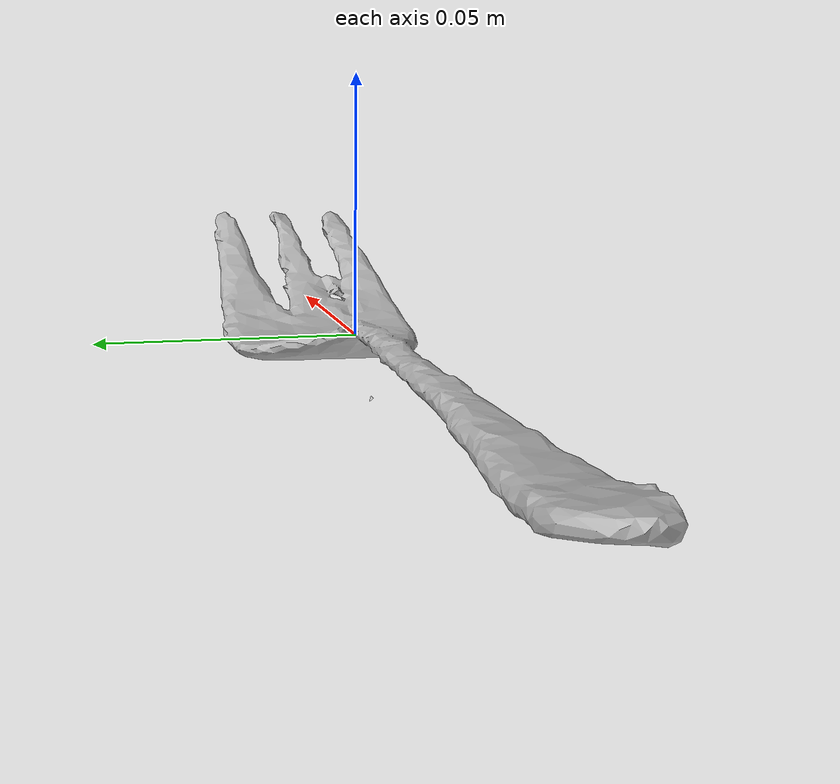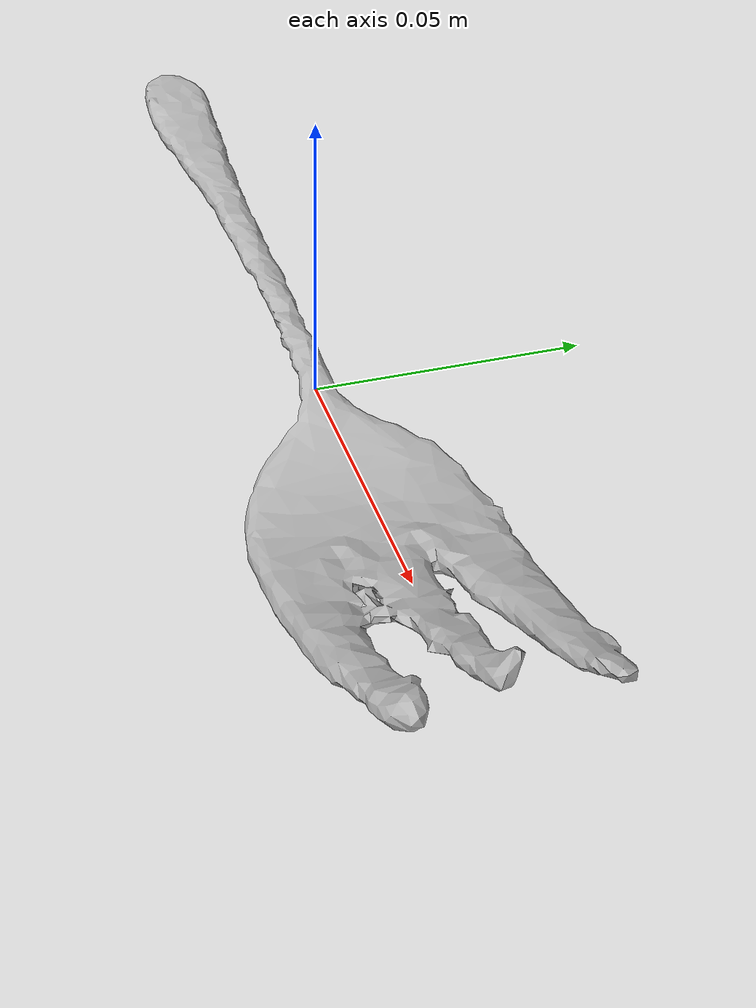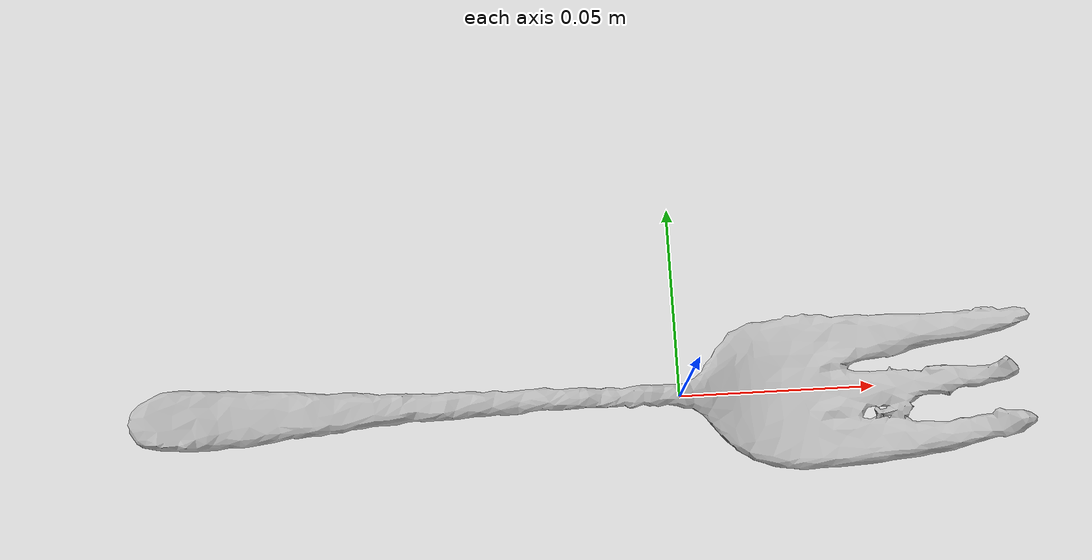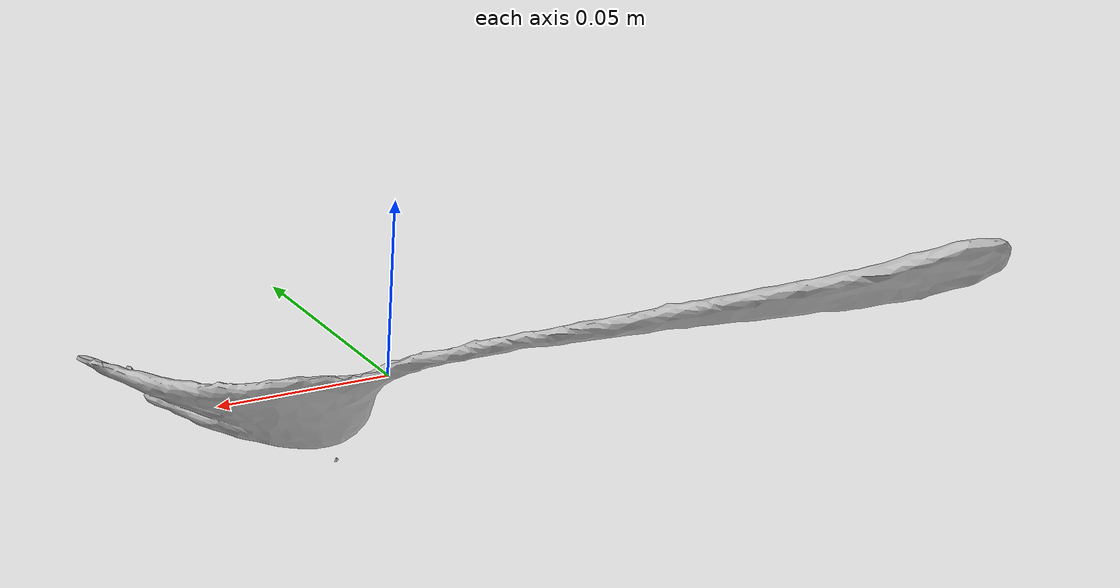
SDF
<?xml version='1.0'?>
<sdf version='1.6'>
	<model name='a_forkbig'>
		<static>false</static>
		<pose>0 0 0 0 0 0</pose>

		<link name='link'>
			<inertial>
			<mass>0.071</mass>
			<pose>0.0027688 8.3438e-05 -2.608e-05 0 0 0</pose>
				<inertia>
					<ixx>2.6672e-07</ixx>
					<ixy>0</ixy>
					<ixz>0</ixz>
					<iyy>8.0767e-07</iyy>
					<iyz>0</iyz>
					<izz>5.5867e-07</izz>
				</inertia>
			</inertial>
			<sensor name="tool_contact_sensor" type="contact">
				<always_on>true</always_on>
				<update_rate>30.0</update_rate>
				<contact>
					<collision>collision</collision>
				</contact>
				<plugin name="tool_bumper" filename="libgazebo_ros_bumper.so">
					<bumperTopicName>tool_contact_sensor_state</bumperTopicName>
					<frameName>world</frameName>
				</plugin>
			</sensor>
			<collision name='collision'>
				<geometry>
					<mesh>
						<uri>model://a_forkbig/a_forkbig.dae</uri>
					</mesh>
				</geometry>
				<surface>
					<friction>
						<ode>
							<mu>0.2</mu>
							<mu2>0.2</mu2>
						</ode>
					</friction>
				</surface>
			</collision>
			<visual name='visual'>
				<geometry>
					<mesh>
						<uri>model://a_forkbig/a_forkbig.dae</uri>
					</mesh>
				</geometry>
			</visual>
		</link>
	</model>
</sdf>
